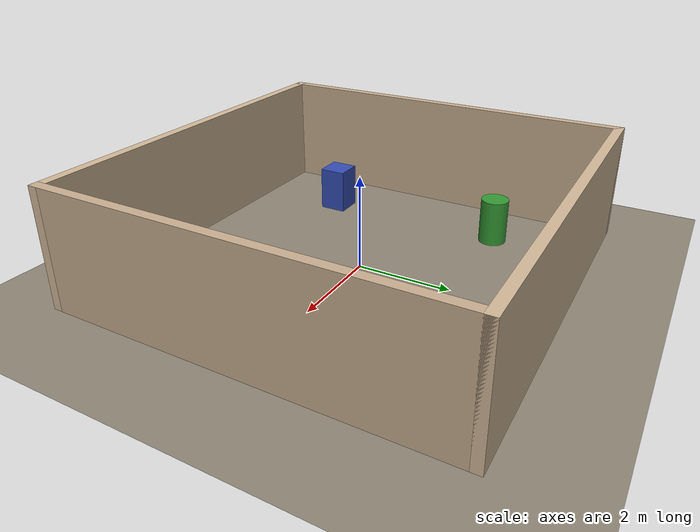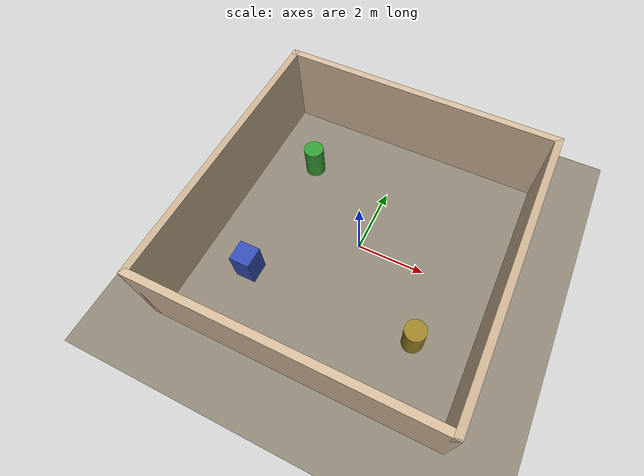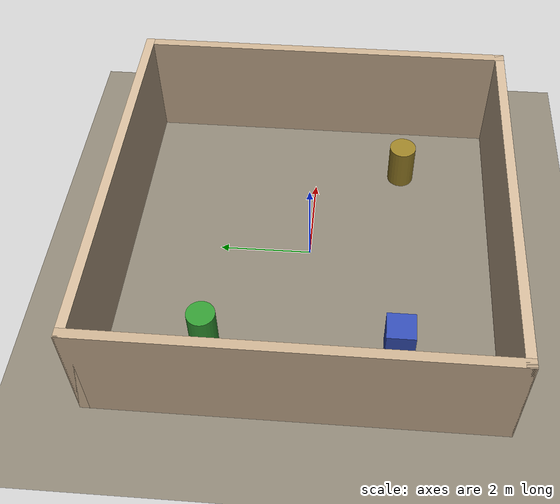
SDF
<?xml version="1.0" ?>

<sdf version="1.9">
  <world name="default">

    <!-- Required Gazebo Harmonic system plugins -->
    <plugin filename="gz-sim-physics-system"
            name="gz::sim::systems::Physics"/>
    <plugin filename="gz-sim-user-commands-system"
            name="gz::sim::systems::UserCommands"/>
    <plugin filename="gz-sim-scene-broadcaster-system"
            name="gz::sim::systems::SceneBroadcaster"/>
    <plugin filename="gz-sim-sensors-system"
            name="gz::sim::systems::Sensors">
      <render_engine>ogre2</render_engine>
    </plugin>
    <plugin filename="gz-sim-imu-system"
            name="gz::sim::systems::Imu"/>
    <plugin filename="gz-sim-navsat-system"
            name="gz::sim::systems::NavSat"/>

    <!-- Default user camera position closer to the robot -->
    <gui fullscreen='0'>
      <camera name='user_camera'>
        <pose>1.0 -1.0 0.8 0 0.5 2.35</pose>
        <view_controller>orbit</view_controller>
        <projection_type>perspective</projection_type>
      </camera>
    </gui>

    <spherical_coordinates>
      <surface_model>EARTH_WGS84</surface_model>
      <latitude_deg>18.6171216</latitude_deg>
      <longitude_deg>73.9098935</longitude_deg>
      <elevation>558.16</elevation>
      <heading_deg>0.0</heading_deg>
    </spherical_coordinates>

    <!--Physics-->
    <physics name="5ms" type="ignored">
      <max_step_size>0.005</max_step_size>
      <real_time_factor>1.0</real_time_factor>
      <real_time_update_rate>200</real_time_update_rate>
    </physics>

    <!--Scene -->
    <scene>
      <ambient>0.4 0.4 0.4 1</ambient>
      <background>0.2 0.2 0.2 1</background>
      <shadows>true</shadows>
      <grid>false</grid>
    </scene>

    <!--  Lighting -->
    <light name="sun" type="directional">
      <cast_shadows>true</cast_shadows>
      <pose>0 0 10 0 0 0</pose>
      <diffuse>0.9 0.9 0.9 1</diffuse>
      <specular>0.3 0.3 0.3 1</specular>
      <direction>-0.5 0.1 -0.9</direction>
      <attenuation>
        <range>1000</range>
        <constant>0.9</constant>
        <linear>0.01</linear>
        <quadratic>0.001</quadratic>
      </attenuation>
    </light>

    <light name="ambient_fill" type="point">
      <pose>0 0 4 0 0 0</pose>
      <diffuse>0.4 0.4 0.45 1</diffuse>
      <specular>0.0 0.0 0.0 1</specular>
      <attenuation>
        <range>20</range>
        <constant>0.5</constant>
        <linear>0.05</linear>
        <quadratic>0.002</quadratic>
      </attenuation>
      <cast_shadows>false</cast_shadows>
    </light>

    <!-- FLOOR -->
    <model name="floor">
      <static>true</static>
      <pose>0 0 0 0 0 0</pose>
      <link name="link">
        <collision name="collision">
          <geometry>
            <plane><normal>0 0 1</normal><size>100 100</size></plane>
          </geometry>
          <surface>
            <friction><ode><mu>100</mu><mu2>50</mu2></ode></friction>
          </surface>
        </collision>
        <visual name="visual">
          <cast_shadows>false</cast_shadows>
          <geometry>
            <plane><normal>0 0 1</normal><size>100 100</size></plane>
          </geometry>
          <material>
            <ambient>0.4 0.38 0.34 1</ambient>
            <diffuse>0.55 0.52 0.46 1</diffuse>
            <specular>0.02 0.02 0.02 1</specular>
          </material>
        </visual>
      </link>
    </model>

    <!-- North wall -->
    <model name="wall_north">
      <static>true</static>
      <pose>0 4.1 0 0 0 0</pose>
      <link name="link">
        <collision name="collision">
          <geometry><box><size>8.4 0.2 2.5</size></box></geometry>
          <pose>0 0 1.25 0 0 0</pose>
        </collision>
        <visual name="visual">
          <pose>0 0 1.25 0 0 0</pose>
          <geometry><box><size>8.4 0.2 2.5</size></box></geometry>
          <material>
            <ambient>0.72 0.62 0.5 1</ambient>
            <diffuse>0.82 0.72 0.6 1</diffuse>
            <specular>0.05 0.05 0.05 1</specular>
          </material>
        </visual>
      </link>
    </model>

    <!-- South wall -->
    <model name="wall_south">
      <static>true</static>
      <pose>0 -4.1 0 0 0 0</pose>
      <link name="link">
        <collision name="collision">
          <geometry><box><size>8.4 0.2 2.5</size></box></geometry>
          <pose>0 0 1.25 0 0 0</pose>
        </collision>
        <visual name="visual">
          <pose>0 0 1.25 0 0 0</pose>
          <geometry><box><size>8.4 0.2 2.5</size></box></geometry>
          <material>
            <ambient>0.72 0.62 0.5 1</ambient>
            <diffuse>0.82 0.72 0.6 1</diffuse>
            <specular>0.05 0.05 0.05 1</specular>
          </material>
        </visual>
      </link>
    </model>

    <!-- East wall -->
    <model name="wall_east">
      <static>true</static>
      <pose>4.1 0 0 0 0 0</pose>
      <link name="link">
        <collision name="collision">
          <geometry><box><size>0.2 8.4 2.5</size></box></geometry>
          <pose>0 0 1.25 0 0 0</pose>
        </collision>
        <visual name="visual">
          <pose>0 0 1.25 0 0 0</pose>
          <geometry><box><size>0.2 8.4 2.5</size></box></geometry>
          <material>
            <ambient>0.68 0.58 0.46 1</ambient>
            <diffuse>0.78 0.68 0.56 1</diffuse>
            <specular>0.05 0.05 0.05 1</specular>
          </material>
        </visual>
      </link>
    </model>

    <!-- West wall -->
    <model name="wall_west">
      <static>true</static>
      <pose>-4.1 0 0 0 0 0</pose>
      <link name="link">
        <collision name="collision">
          <geometry><box><size>0.2 8.4 2.5</size></box></geometry>
          <pose>0 0 1.25 0 0 0</pose>
        </collision>
        <visual name="visual">
          <pose>0 0 1.25 0 0 0</pose>
          <geometry><box><size>0.2 8.4 2.5</size></box></geometry>
          <material>
            <ambient>0.68 0.58 0.46 1</ambient>
            <diffuse>0.78 0.68 0.56 1</diffuse>
            <specular>0.05 0.05 0.05 1</specular>
          </material>
        </visual>
      </link>
    </model>

    <!-- Box NE quadrant -->

    <!-- Box SW quadrant -->
    <model name="box_sw">
      <static>true</static>
      <pose>-2.5 -2.0 0.5 0 0 0</pose>
      <link name="link">
        <collision name="collision">
          <geometry><box><size>0.6 0.6 1.0</size></box></geometry>
        </collision>
        <visual name="visual">
          <geometry><box><size>0.6 0.6 1.0</size></box></geometry>
          <material>
            <ambient>0.15 0.2 0.6 1</ambient>
            <diffuse>0.2 0.3 0.7 1</diffuse>
            <specular>0.05 0.05 0.1 1</specular>
          </material>
        </visual>
      </link>
    </model>

    <!-- Cylinder NW quadrant -->
    <model name="cylinder_nw">
      <static>true</static>
      <pose>-2.5 2.0 0.5 0 0 0</pose>
      <link name="link">
        <collision name="collision">
          <geometry><cylinder><radius>0.3</radius><length>1.0</length></cylinder></geometry>
        </collision>
        <visual name="visual">
          <geometry><cylinder><radius>0.3</radius><length>1.0</length></cylinder></geometry>
          <material>
            <ambient>0.15 0.5 0.15 1</ambient>
            <diffuse>0.2 0.6 0.2 1</diffuse>
            <specular>0.05 0.1 0.05 1</specular>
          </material>
        </visual>
      </link>
    </model>

    <!-- Cylinder SE quadrant -->
    <model name="cylinder_se">
      <static>true</static>
      <pose>2.5 -2.0 0.5 0 0 0</pose>
      <link name="link">
        <collision name="collision">
          <geometry><cylinder><radius>0.3</radius><length>1.0</length></cylinder></geometry>
        </collision>
        <visual name="visual">
          <geometry><cylinder><radius>0.3</radius><length>1.0</length></cylinder></geometry>
          <material>
            <ambient>0.5 0.4 0.1 1</ambient>
            <diffuse>0.6 0.5 0.15 1</diffuse>
            <specular>0.1 0.08 0.02 1</specular>
          </material>
        </visual>
      </link>
    </model>
  </world>
</sdf>
